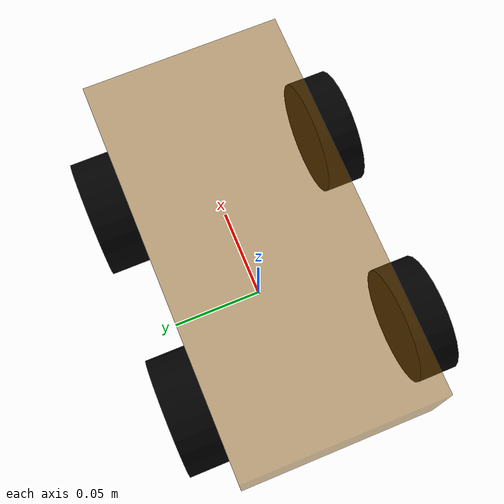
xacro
<!--
    使用 xacro 优化 URDF 版的小车底盘实现：

    实现思路:
    1.将一些常量、变量封装为 xacro:property
      比如:PI 值、小车底盘半径、离地间距、车轮半径、宽度 ....
    2.使用 宏 封装驱动轮以及支撑轮实现，调用相关宏生成驱动轮与支撑轮

-->
<!-- 根标签，必须声明 xmlns:xacro -->
<robot name="my_base" xmlns:xacro="http://www.ros.org/wiki/xacro">
    <!-- 封装变量、常量 -->
    <!-- PI 值设置精度需要高一些，否则后续车轮翻转量计算时，可能会出现肉眼不能察觉的车轮倾斜，从而导致模型抖动 -->
    <xacro:property name="PI" value="3.1415926"/>
    <!-- 宏:黑色设置 -->
    <material name="black">
        <color rgba="0.0 0.0 0.0 1.0" />
    </material>
    <!-- 底盘属性 -->
    <xacro:property name="base_footprint_radius" value="0.001" /> <!-- base_footprint 半径  -->
    <xacro:property name="base_link_length" value="0.2" />  <!--base_link 长  -->
    <xacro:property name="base_link_width" value="0.1" />  <!--base_link 宽 -->
    <xacro:property name="base_link_height" value="0.05" />  <!--base_link 高 -->
    <xacro:property name="earth_space" value="0.055" /> <!-- 离地间距 -->
    <xacro:property name="base_link_m" value="2.0" /> <!-- 质量  -->

    <!-- 底盘 -->
    <link name="base_footprint">
      <visual>
        <geometry>
          <sphere radius="${base_footprint_radius}" />
        </geometry>
      </visual>
    </link>

    <link name="base_link">
      <visual>
        <geometry>
          <box size="${base_link_length} ${base_link_width} ${base_link_height}" />
        </geometry>
        <origin xyz="0 0 0" rpy="0 0 0" />
        <material name="black">
          <color rgba="0.5 0.3 0.0 0.5" />
        </material>
      </visual>
      <collision>
        <geometry>
          <box size="${base_link_length} ${base_link_width} ${base_link_height}" />
        </geometry>
        <origin xyz="0 0 0" rpy="0 0 0" />
      </collision>
      <xacro:box_inertial_matrix m="${base_link_m}" l="${base_link_length}" w="${base_link_width}" h="${base_link_height}" />
    </link>

    <joint name="base_link2base_footprint" type="fixed">
      <parent link="base_footprint" />
      <child link="base_link" />
      <origin xyz="0 0 ${earth_space + base_link_height / 2 }" />
    </joint>
    <gazebo reference="base_link">
        <material>Gazebo/Blue</material>
    </gazebo>

    <!-- 驱动轮 -->
    <!-- 驱动轮属性 -->
    <xacro:property name="wheel_radius" value="0.03" /><!-- 半径 -->
    <xacro:property name="wheel_length" value="0.02" /><!-- 宽度 -->
    <xacro:property name="wheel_m" value="1.0" /> <!-- 质量  -->

    <!-- 驱动轮宏实现 -->
    <xacro:macro name="add_wheels" params="name1 name2 flag1 flag2">
      <link name="${name1}_${name2}_wheel">
        <visual>
          <geometry>
            <cylinder radius="${wheel_radius}" length="${wheel_length}" />
          </geometry>
          <origin xyz="0.0 0.0 0.0" rpy="${PI / 2} 0.0 0.0" />
          <material name="black" />
        </visual>
        <collision>
          <geometry>
            <cylinder radius="${wheel_radius}" length="${wheel_length}" />
          </geometry>
          <origin xyz="0.0 0.0 0.0" rpy="${PI / 2} 0.0 0.0" />
        </collision>
        <xacro:cylinder_inertial_matrix m="${wheel_m}" r="${wheel_radius}" h="${wheel_length}" />
      </link>

      <joint name="${name1}_${name2}_wheel_base_link" type="continuous">
        <parent link="base_link" />
        <child link="${name1}_${name2}_wheel" />
        <origin xyz="${flag2 * (base_link_length/2 - 0.015 - wheel_radius)} ${flag1 * (base_link_width/2 + wheel_length/2)} ${(wheel_radius - earth_space ) }" />
        <axis xyz="0 1 0" />
      </joint>

      <gazebo reference="${name1}_${name2}_wheel">
        <material>Gazebo/Red</material>
      </gazebo>
    </xacro:macro>

    <xacro:add_wheels name1="left" name2="front" flag1="1" flag2="1" />
    <xacro:add_wheels name1="right" name2="front" flag1="-1" flag2="1" />
    <xacro:add_wheels name1="left" name2="back" flag1="1" flag2="-1" />
    <xacro:add_wheels name1="right" name2="back" flag1="-1" flag2="-1" />

</robot>
